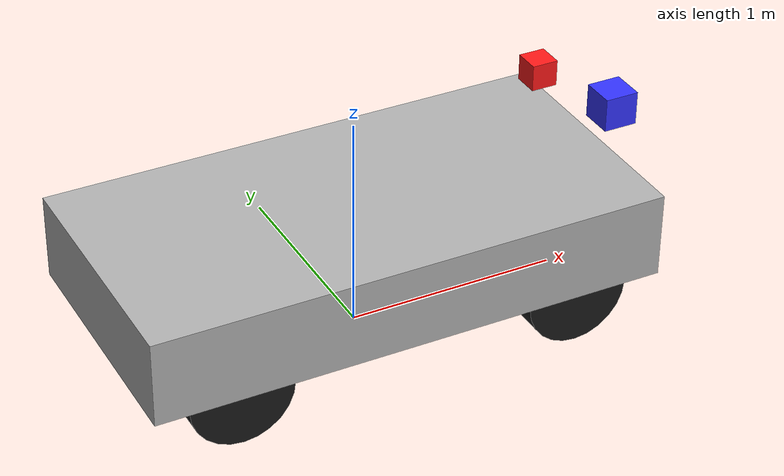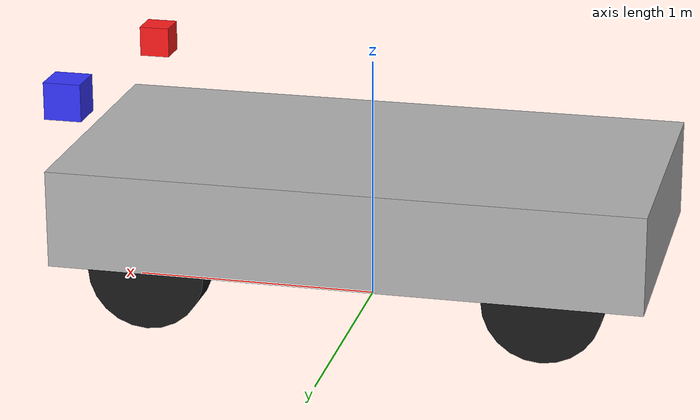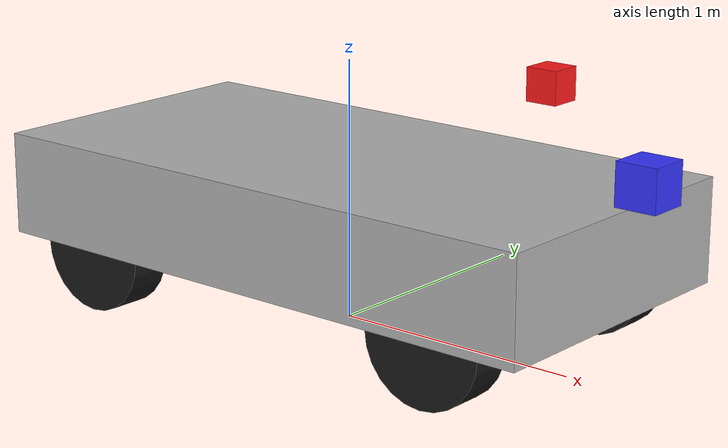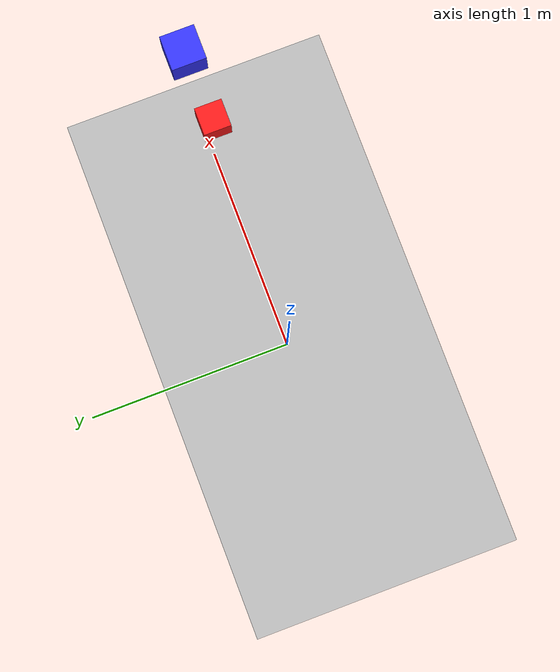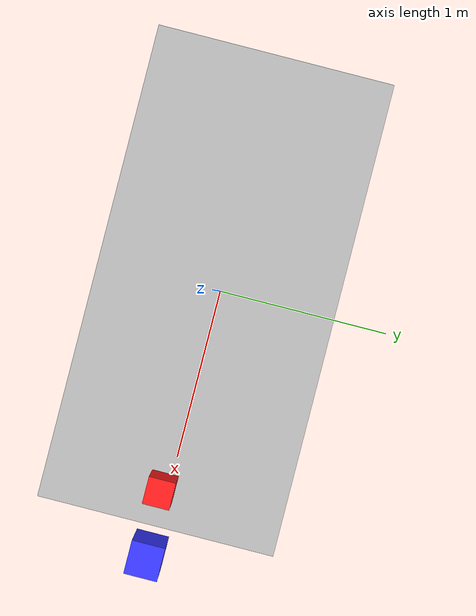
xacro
<?xml version="1.0"?>
<robot name="simple_car" xmlns:xacro="http://www.ros.org/wiki/xacro">

  <!-- Scale parameters -->
  <xacro:property name="scale" value="2"/>
  <xacro:property name="mass_scale" value="${scale * scale * scale}"/>
  <xacro:property name="inertia_scale" value="${scale * scale * scale * scale * scale}"/>

  <!-- Parameters -->
  <xacro:property name="body_length" value="${1.2 * scale}"/>
  <xacro:property name="body_width" value="${0.6 * scale}"/>
  <xacro:property name="body_height" value="${0.2 * scale}"/>

  <xacro:property name="wheel_radius" value="${0.12 * scale}"/>
  <xacro:property name="wheel_width" value="${0.08 * scale}"/>

  <xacro:property name="wheelbase" value="${0.8 * scale}"/>
  <xacro:property name="track_width" value="${0.5 * scale}"/>

  <xacro:property name="body_center_z" value="${wheel_radius + body_height / 2.0}"/>
  <xacro:property name="wheel_z" value="${wheel_radius}"/>

  <xacro:property name="laser_size" value="${0.08 * scale}"/>
  <xacro:property name="steer_link_size" value="${0.05 * scale}"/>

  <!-- Derived values -->
  <xacro:property name="front_axle_x" value="${wheelbase / 2.0}"/>
  <xacro:property name="rear_axle_x" value="${-wheelbase / 2.0}"/>
  <xacro:property name="left_y" value="${track_width / 2.0}"/>
  <xacro:property name="right_y" value="${-track_width / 2.0}"/>

  <!-- Base link -->
  <link name="base_link">
    <visual>
      <origin xyz="0 0 ${body_center_z}" rpy="0 0 0"/>
      <geometry>
        <box size="${body_length} ${body_width} ${body_height}"/>
      </geometry>
      <material name="gray">
        <color rgba="0.7 0.7 0.7 1.0"/>
      </material>
    </visual>

    <collision>
      <origin xyz="0 0 ${body_center_z}" rpy="0 0 0"/>
      <geometry>
        <box size="${body_length} ${body_width} ${body_height}"/>
      </geometry>
    </collision>

    <inertial>
      <origin xyz="0 0 ${body_center_z}" rpy="0 0 0"/>
      <mass value="${20.0 * mass_scale}"/>
      <inertia
        ixx="${1.0 * inertia_scale}" ixy="0.0" ixz="0.0"
        iyy="${2.0 * inertia_scale}" iyz="0.0"
        izz="${2.5 * inertia_scale}"/>
    </inertial>
  </link>

  <!-- Front left steer link -->
  <link name="front_left_steer_link">
    <visual>
      <origin xyz="0 0 0" rpy="0 0 0"/>
      <geometry>
        <box size="${steer_link_size} ${steer_link_size} ${steer_link_size}"/>
      </geometry>
      <material name="dark_gray">
        <color rgba="0.3 0.3 0.3 1.0"/>
      </material>
    </visual>

    <collision>
      <origin xyz="0 0 0" rpy="0 0 0"/>
      <geometry>
        <box size="${steer_link_size} ${steer_link_size} ${steer_link_size}"/>
      </geometry>
    </collision>

    <inertial>
      <mass value="${0.2 * mass_scale}"/>
      <inertia
        ixx="${0.001 * inertia_scale}" ixy="0.0" ixz="0.0"
        iyy="${0.001 * inertia_scale}" iyz="0.0"
        izz="${0.001 * inertia_scale}"/>
    </inertial>
  </link>

  <joint name="front_left_steer_joint" type="revolute">
    <parent link="base_link"/>
    <child link="front_left_steer_link"/>
    <origin xyz="${front_axle_x} ${left_y} ${wheel_z}" rpy="0 0 0"/>
    <axis xyz="0 0 1"/>
    <limit lower="-0.6" upper="0.6" effort="20" velocity="1.5"/>
  </joint>

  <!-- Front right steer link -->
  <link name="front_right_steer_link">
    <visual>
      <origin xyz="0 0 0" rpy="0 0 0"/>
      <geometry>
        <box size="${steer_link_size} ${steer_link_size} ${steer_link_size}"/>
      </geometry>
      <material name="dark_gray"/>
    </visual>

    <collision>
      <origin xyz="0 0 0" rpy="0 0 0"/>
      <geometry>
        <box size="${steer_link_size} ${steer_link_size} ${steer_link_size}"/>
      </geometry>
    </collision>

    <inertial>
      <mass value="${0.2 * mass_scale}"/>
      <inertia
        ixx="${0.001 * inertia_scale}" ixy="0.0" ixz="0.0"
        iyy="${0.001 * inertia_scale}" iyz="0.0"
        izz="${0.001 * inertia_scale}"/>
    </inertial>
  </link>

  <joint name="front_right_steer_joint" type="revolute">
    <parent link="base_link"/>
    <child link="front_right_steer_link"/>
    <origin xyz="${front_axle_x} ${right_y} ${wheel_z}" rpy="0 0 0"/>
    <axis xyz="0 0 1"/>
    <limit lower="-0.6" upper="0.6" effort="20" velocity="1.5"/>
  </joint>

  <!-- Front left wheel -->
  <link name="front_left_wheel">
    <visual>
      <origin xyz="0 0 0" rpy="1.5708 0 0"/>
      <geometry>
        <cylinder radius="${wheel_radius}" length="${wheel_width}"/>
      </geometry>
      <material name="black">
        <color rgba="0.1 0.1 0.1 1.0"/>
      </material>
    </visual>

    <collision>
      <origin xyz="0 0 0" rpy="1.5708 0 0"/>
      <geometry>
        <cylinder radius="${wheel_radius}" length="${wheel_width}"/>
      </geometry>
    </collision>

    <inertial>
      <mass value="${1.5 * mass_scale}"/>
      <inertia
        ixx="${0.02 * inertia_scale}" ixy="0.0" ixz="0.0"
        iyy="${0.02 * inertia_scale}" iyz="0.0"
        izz="${0.02 * inertia_scale}"/>
    </inertial>
  </link>

  <joint name="front_left_wheel_joint" type="continuous">
    <parent link="front_left_steer_link"/>
    <child link="front_left_wheel"/>
    <origin xyz="0 0 0" rpy="0 0 0"/>
    <axis xyz="0 1 0"/>
  </joint>

  <!-- Front right wheel -->
  <link name="front_right_wheel">
    <visual>
      <origin xyz="0 0 0" rpy="1.5708 0 0"/>
      <geometry>
        <cylinder radius="${wheel_radius}" length="${wheel_width}"/>
      </geometry>
      <material name="black"/>
    </visual>

    <collision>
      <origin xyz="0 0 0" rpy="1.5708 0 0"/>
      <geometry>
        <cylinder radius="${wheel_radius}" length="${wheel_width}"/>
      </geometry>
    </collision>

    <inertial>
      <mass value="${1.5 * mass_scale}"/>
      <inertia
        ixx="${0.02 * inertia_scale}" ixy="0.0" ixz="0.0"
        iyy="${0.02 * inertia_scale}" iyz="0.0"
        izz="${0.02 * inertia_scale}"/>
    </inertial>
  </link>

  <joint name="front_right_wheel_joint" type="continuous">
    <parent link="front_right_steer_link"/>
    <child link="front_right_wheel"/>
    <origin xyz="0 0 0" rpy="0 0 0"/>
    <axis xyz="0 1 0"/>
  </joint>

  <!-- Rear left wheel -->
  <link name="rear_left_wheel">
    <visual>
      <origin xyz="0 0 0" rpy="1.5708 0 0"/>
      <geometry>
        <cylinder radius="${wheel_radius}" length="${wheel_width}"/>
      </geometry>
      <material name="black"/>
    </visual>

    <collision>
      <origin xyz="0 0 0" rpy="1.5708 0 0"/>
      <geometry>
        <cylinder radius="${wheel_radius}" length="${wheel_width}"/>
      </geometry>
    </collision>

    <inertial>
      <mass value="${1.5 * mass_scale}"/>
      <inertia
        ixx="${0.02 * inertia_scale}" ixy="0.0" ixz="0.0"
        iyy="${0.02 * inertia_scale}" iyz="0.0"
        izz="${0.02 * inertia_scale}"/>
    </inertial>
  </link>

  <joint name="rear_left_wheel_joint" type="continuous">
    <parent link="base_link"/>
    <child link="rear_left_wheel"/>
    <origin xyz="${rear_axle_x} ${left_y} ${wheel_z}" rpy="0 0 0"/>
    <axis xyz="0 1 0"/>
  </joint>

  <!-- Rear right wheel -->
  <link name="rear_right_wheel">
    <visual>
      <origin xyz="0 0 0" rpy="1.5708 0 0"/>
      <geometry>
        <cylinder radius="${wheel_radius}" length="${wheel_width}"/>
      </geometry>
      <material name="black"/>
    </visual>

    <collision>
      <origin xyz="0 0 0" rpy="1.5708 0 0"/>
      <geometry>
        <cylinder radius="${wheel_radius}" length="${wheel_width}"/>
      </geometry>
    </collision>

    <inertial>
      <mass value="${1.5 * mass_scale}"/>
      <inertia
        ixx="${0.02 * inertia_scale}" ixy="0.0" ixz="0.0"
        iyy="${0.02 * inertia_scale}" iyz="0.0"
        izz="${0.02 * inertia_scale}"/>
    </inertial>
  </link>

  <joint name="rear_right_wheel_joint" type="continuous">
    <parent link="base_link"/>
    <child link="rear_right_wheel"/>
    <origin xyz="${rear_axle_x} ${right_y} ${wheel_z}" rpy="0 0 0"/>
    <axis xyz="0 1 0"/>
  </joint>

  <!-- Laser -->
  <link name="laser_link">
    <visual>
      <origin xyz="0 0 0" rpy="0 0 0"/>
      <geometry>
        <box size="${laser_size} ${laser_size} ${laser_size}"/>
      </geometry>
      <material name="blue">
        <color rgba="0.2 0.2 1.0 1.0"/>
      </material>
    </visual>

    <collision>
      <origin xyz="0 0 0" rpy="0 0 0"/>
      <geometry>
        <box size="${laser_size} ${laser_size} ${laser_size}"/>
      </geometry>
    </collision>

    <inertial>
      <mass value="${0.2 * mass_scale}"/>
      <inertia
        ixx="${0.001 * inertia_scale}" ixy="0.0" ixz="0.0"
        iyy="${0.001 * inertia_scale}" iyz="0.0"
        izz="${0.001 * inertia_scale}"/>
    </inertial>
  </link>

  <joint name="laser_joint" type="fixed">
      <parent link="base_link"/>
      <child link="laser_link"/>
      <origin xyz="${0.65 * scale} 0 ${0.38 * scale}" rpy="0 0 0"/>
  </joint>

  <!-- Camera -->
  <xacro:property name="camera_size" value="${0.06 * scale}"/>

  <link name="camera_link">
    <visual>
      <origin xyz="0 0 0" rpy="0 0 0"/>
      <geometry>
        <box size="${camera_size} ${camera_size} ${camera_size}"/>
      </geometry>
      <material name="red">
        <color rgba="1.0 0.1 0.1 1.0"/>
      </material>
    </visual>

    <collision>
      <origin xyz="0 0 0" rpy="0 0 0"/>
      <geometry>
        <box size="${camera_size} ${camera_size} ${camera_size}"/>
      </geometry>
    </collision>

    <inertial>
      <mass value="${0.2 * mass_scale}"/>
      <inertia
        ixx="${0.001 * inertia_scale}" ixy="0.0" ixz="0.0"
        iyy="${0.001 * inertia_scale}" iyz="0.0"
        izz="${0.001 * inertia_scale}"/>
    </inertial>
  </link>

  <joint name="camera_joint" type="fixed">
    <parent link="base_link"/>
    <child link="camera_link"/>
    <origin xyz="${0.45 * scale} 0 ${0.52 * scale}" rpy="0 0 0"/>
  </joint>

  <!-- Gazebo wheel friction -->
  <gazebo reference="front_left_wheel">
    <mu1>1.0</mu1>
    <mu2>1.0</mu2>
    <kp>1000000.0</kp>
    <kd>100.0</kd>
  </gazebo>

  <gazebo reference="front_right_wheel">
    <mu1>1.0</mu1>
    <mu2>1.0</mu2>
    <kp>1000000.0</kp>
    <kd>100.0</kd>
  </gazebo>

  <gazebo reference="rear_left_wheel">
    <mu1>1.0</mu1>
    <mu2>1.0</mu2>
    <kp>1000000.0</kp>
    <kd>100.0</kd>
  </gazebo>

  <gazebo reference="rear_right_wheel">
    <mu1>1.0</mu1>
    <mu2>1.0</mu2>
    <kp>1000000.0</kp>
    <kd>100.0</kd>
  </gazebo>

  <!-- Gazebo lidar -->
  <gazebo reference="laser_link">
    <sensor name="laser_sensor" type="ray">
      <always_on>true</always_on>
      <visualize>true</visualize>
      <update_rate>10.0</update_rate>
      <pose>0 0 0 0 0 0</pose>

      <ray>
        <scan>
          <horizontal>
            <samples>360</samples>
            <resolution>1</resolution>
            <min_angle>-1.5708</min_angle>
            <max_angle>1.5708</max_angle>
          </horizontal>
        </scan>
        <range>
          <min>0.2</min>
          <max>10.0</max>
          <resolution>0.01</resolution>
        </range>
      </ray>

      <plugin name="laser_plugin" filename="libgazebo_ros_ray_sensor.so">
        <ros>
          <remapping>~/out:=scan</remapping>
        </ros>
        <output_type>sensor_msgs/LaserScan</output_type>
        <frame_name>laser_link</frame_name>
      </plugin>
    </sensor>
  </gazebo>

  <!-- Gazebo camera -->
  <gazebo reference="camera_link">
    <sensor name="front_camera" type="camera">
      <always_on>true</always_on>
      <visualize>true</visualize>
      <update_rate>20.0</update_rate>
      <pose>0 0 0 0 0 0</pose>

      <camera>
        <horizontal_fov>1.047</horizontal_fov>
        <image>
          <width>640</width>
          <height>480</height>
          <format>R8G8B8</format>
        </image>
        <clip>
          <near>0.05</near>
          <far>50.0</far>
        </clip>
      </camera>

      <plugin name="camera_plugin" filename="libgazebo_ros_camera.so">
        <ros>
          <namespace>/camera</namespace>
        </ros>
        <frame_name>camera_link</frame_name>
      </plugin>
    </sensor>
  </gazebo>

  <!-- ros2_control -->
  <ros2_control name="GazeboSystem" type="system">
    <hardware>
      <plugin>gazebo_ros2_control/GazeboSystem</plugin>
    </hardware>

    <joint name="front_left_steer_joint">
      <command_interface name="position"/>
      <state_interface name="position"/>
      <state_interface name="velocity"/>
    </joint>

    <joint name="front_right_steer_joint">
      <command_interface name="position"/>
      <state_interface name="position"/>
      <state_interface name="velocity"/>
    </joint>

    <joint name="rear_left_wheel_joint">
      <command_interface name="velocity"/>
      <state_interface name="position"/>
      <state_interface name="velocity"/>
    </joint>

    <joint name="rear_right_wheel_joint">
      <command_interface name="velocity"/>
      <state_interface name="position"/>
      <state_interface name="velocity"/>
    </joint>
  </ros2_control>

  <gazebo>
    <plugin filename="libgazebo_ros2_control.so" name="gazebo_ros2_control">
      <robot_param>robot_description</robot_param>
      <robot_param_node>robot_state_publisher</robot_param_node>
      <parameters>$(find simple_avoidance_sim)/config/controllers.yaml</parameters>
    </plugin>
  </gazebo>

  <!-- transmissions -->
  <transmission name="front_left_steer_trans">
    <type>transmission_interface/SimpleTransmission</type>
    <joint name="front_left_steer_joint">
      <hardwareInterface>hardware_interface/PositionJointInterface</hardwareInterface>
    </joint>
    <actuator name="front_left_steer_motor">
      <hardwareInterface>hardware_interface/PositionJointInterface</hardwareInterface>
      <mechanicalReduction>1</mechanicalReduction>
    </actuator>
  </transmission>

  <transmission name="front_right_steer_trans">
    <type>transmission_interface/SimpleTransmission</type>
    <joint name="front_right_steer_joint">
      <hardwareInterface>hardware_interface/PositionJointInterface</hardwareInterface>
    </joint>
    <actuator name="front_right_steer_motor">
      <hardwareInterface>hardware_interface/PositionJointInterface</hardwareInterface>
      <mechanicalReduction>1</mechanicalReduction>
    </actuator>
  </transmission>

  <transmission name="rear_left_wheel_trans">
    <type>transmission_interface/SimpleTransmission</type>
    <joint name="rear_left_wheel_joint">
      <hardwareInterface>hardware_interface/VelocityJointInterface</hardwareInterface>
    </joint>
    <actuator name="rear_left_wheel_motor">
      <hardwareInterface>hardware_interface/VelocityJointInterface</hardwareInterface>
      <mechanicalReduction>1</mechanicalReduction>
    </actuator>
  </transmission>

  <transmission name="rear_right_wheel_trans">
    <type>transmission_interface/SimpleTransmission</type>
    <joint name="rear_right_wheel_joint">
      <hardwareInterface>hardware_interface/VelocityJointInterface</hardwareInterface>
    </joint>
    <actuator name="rear_right_wheel_motor">
      <hardwareInterface>hardware_interface/VelocityJointInterface</hardwareInterface>
      <mechanicalReduction>1</mechanicalReduction>
    </actuator>
  </transmission>

</robot>
